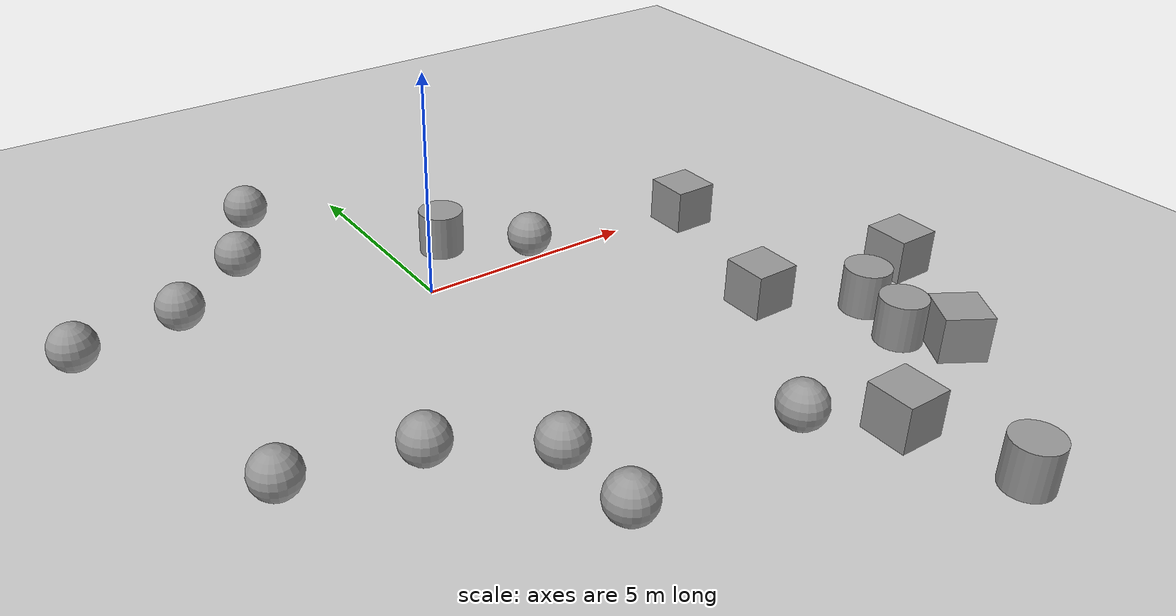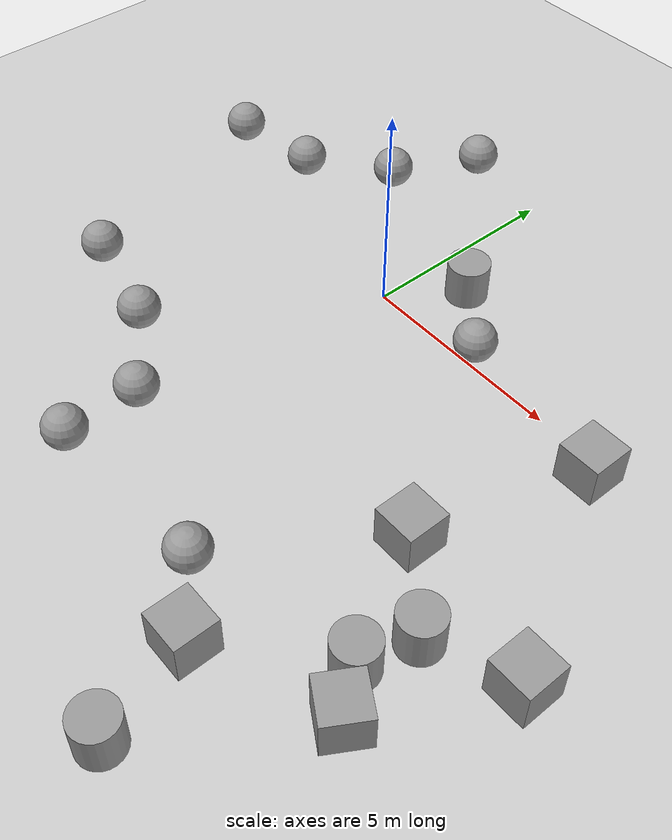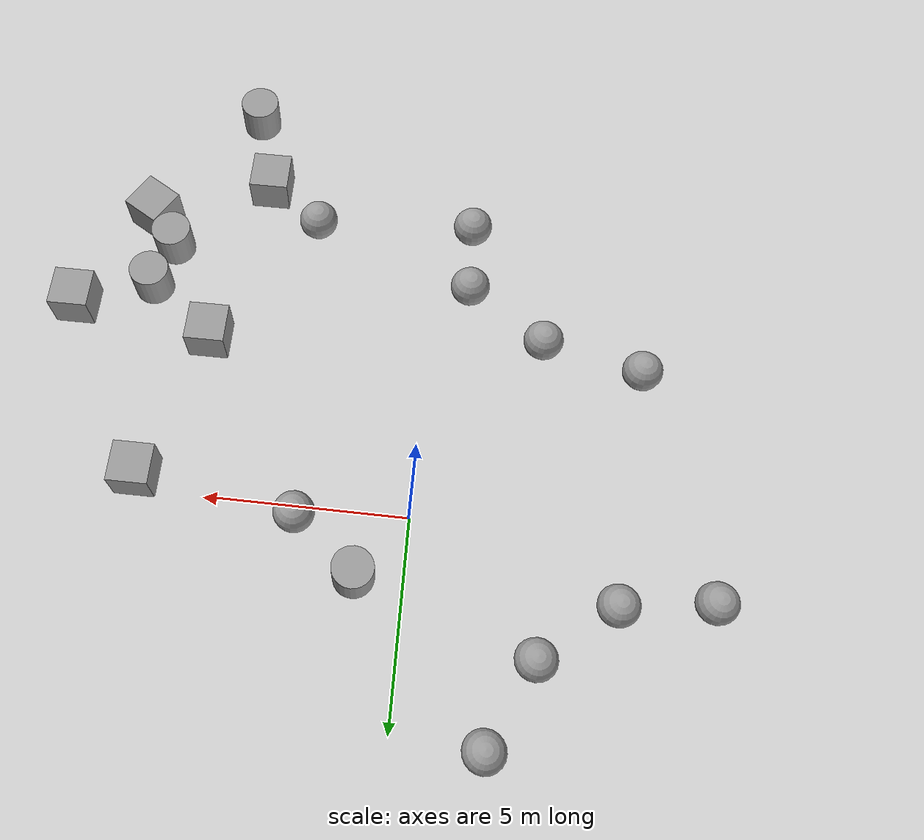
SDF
<sdf version="1.7">
 <world name="default">
  <light name="sun" type="directional">
   <pose>0 0 10 0 -0 0</pose>
   <diffuse>0.8 0.8 0.8 1</diffuse>
   <specular>0.2 0.2 0.2 1</specular>
   <attenuation>
    <range>1000</range>
    <constant>0.9</constant>
    <linear>0.01</linear>
    <quadratic>0.001</quadratic>
   </attenuation>
   <direction>-0.5 0.1 -0.9</direction>
   <spot><inner_angle>0</inner_angle><outer_angle>0</outer_angle><falloff>0</falloff></spot>
  </light>
  <model name="ground_plane">
   <static>1</static>
   <link name="link">
    <collision name="collision">
     <geometry><plane><normal>0 0 1</normal><size>100 100</size></plane></geometry>
     <surface><friction><ode><mu>100</mu><mu2>50</mu2></ode></friction></surface>
    </collision>
    <visual name="visual">
     <cast_shadows>0</cast_shadows>
     <geometry><plane><normal>0 0 1</normal><size>100 100</size></plane></geometry>
     <material>
      <script><uri>file://media/materials/scripts/gazebo.material</uri><name>Gazebo/Grey</name></script>
     </material>
    </visual>
   </link>
  </model>
  <gravity>0 0 -9.8</gravity>
  <magnetic_field>6e-06 2.3e-05 -4.2e-05</magnetic_field>
  <atmosphere type="adiabatic"/>
  <physics type="ode">
   <max_step_size>0.001</max_step_size>
   <real_time_factor>1</real_time_factor>
   <real_time_update_rate>1000</real_time_update_rate>
  </physics>
  <scene><ambient>0.4 0.4 0.4 1</ambient><background>0.7 0.7 0.7 1</background><shadows>1</shadows></scene>
  <audio><device>default</device></audio>
  <spherical_coordinates>
   <surface_model>EARTH_WGS84</surface_model>
   <latitude_deg>0</latitude_deg>
   <longitude_deg>0</longitude_deg>
   <elevation>0</elevation>
   <heading_deg>0</heading_deg>
  </spherical_coordinates>
  <model name="unit_sphere">
   <pose>3.16842 -7.80461 0.5 0 -0 0</pose>
   <link name="link">
    <inertial>
     <mass>1</mass>
     <inertia><ixx>0.1</ixx><ixy>0</ixy><ixz>0</ixz><iyy>0.1</iyy><iyz>0</iyz><izz>0.1</izz></inertia>
    </inertial>
    <collision name="collision"><geometry><sphere><radius>0.5</radius></sphere></geometry></collision>
    <visual name="visual">
     <geometry><sphere><radius>0.5</radius></sphere></geometry>
     <material>
      <script><name>Gazebo/Grey</name><uri>file://media/materials/scripts/gazebo.material</uri></script>
     </material>
    </visual>
   </link>
  </model>
  <model name="unit_cylinder">
   <pose>6.90004 -6.83498 0.499991 -3e-06 1e-06 0.946792</pose>
   <link name="link">
    <inertial>
     <mass>1</mass>
     <inertia><ixx>0.145833</ixx><ixy>0</ixy><ixz>0</ixz><iyy>0.145833</iyy><iyz>0</iyz><izz>0.125</izz></inertia>
    </inertial>
    <collision name="collision">
     <geometry><cylinder><radius>0.5</radius><length>1</length></cylinder></geometry>
    </collision>
    <visual name="visual">
     <geometry><cylinder><radius>0.5</radius><length>1</length></cylinder></geometry>
     <material>
      <script><name>Gazebo/Grey</name><uri>file://media/materials/scripts/gazebo.material</uri></script>
     </material>
    </visual>
   </link>
  </model>
  <model name="unit_box">
   <pose>4.58204 -8.90419 0.499995 0 -1e-05 0</pose>
   <link name="link">
    <inertial>
     <mass>1</mass>
     <inertia>
      <ixx>0.166667</ixx>
      <ixy>0</ixy>
      <ixz>0</ixz>
      <iyy>0.166667</iyy>
      <iyz>0</iyz>
      <izz>0.166667</izz>
     </inertia>
    </inertial>
    <collision name="collision"><geometry><box><size>1 1 1</size></box></geometry></collision>
    <visual name="visual">
     <geometry><box><size>1 1 1</size></box></geometry>
     <material>
      <script><name>Gazebo/Grey</name><uri>file://media/materials/scripts/gazebo.material</uri></script>
     </material>
    </visual>
   </link>
  </model>
  <model name="unit_box_0">
   <pose>5.51619 -4.24815 0.499995 -1e-05 -0 -0</pose>
   <link name="link">
    <inertial>
     <mass>1</mass>
     <inertia>
      <ixx>0.166667</ixx>
      <ixy>0</ixy>
      <ixz>0</ixz>
      <iyy>0.166667</iyy>
      <iyz>0</iyz>
      <izz>0.166667</izz>
     </inertia>
    </inertial>
    <collision name="collision"><geometry><box><size>1 1 1</size></box></geometry></collision>
    <visual name="visual">
     <geometry><box><size>1 1 1</size></box></geometry>
     <material>
      <script><name>Gazebo/Grey</name><uri>file://media/materials/scripts/gazebo.material</uri></script>
     </material>
    </visual>
   </link>
  </model>
  <model name="unit_cylinder_0">
   <pose>7.24357 -5.6011 0.5 0 -0 0</pose>
   <link name="link">
    <inertial>
     <mass>1</mass>
     <inertia><ixx>0.145833</ixx><ixy>0</ixy><ixz>0</ixz><iyy>0.145833</iyy><iyz>0</iyz><izz>0.125</izz></inertia>
    </inertial>
    <collision name="collision">
     <geometry><cylinder><radius>0.5</radius><length>1</length></cylinder></geometry>
    </collision>
    <visual name="visual">
     <geometry><cylinder><radius>0.5</radius><length>1</length></cylinder></geometry>
     <material>
      <script><name>Gazebo/Grey</name><uri>file://media/materials/scripts/gazebo.material</uri></script>
     </material>
    </visual>
   </link>
  </model>
  <model name="unit_sphere_0">
   <pose>-0.924264 -8.03479 0.5 0 -0 0</pose>
   <link name="link">
    <inertial>
     <mass>1</mass>
     <inertia><ixx>0.1</ixx><ixy>0</ixy><ixz>0</ixz><iyy>0.1</iyy><iyz>0</iyz><izz>0.1</izz></inertia>
    </inertial>
    <collision name="collision"><geometry><sphere><radius>0.5</radius></sphere></geometry></collision>
    <visual name="visual">
     <geometry><sphere><radius>0.5</radius></sphere></geometry>
     <material>
      <script><name>Gazebo/Grey</name><uri>file://media/materials/scripts/gazebo.material</uri></script>
     </material>
    </visual>
   </link>
  </model>
  <model name="unit_sphere_1">
   <pose>2.71816 0.265059 0.5 0 -0 0</pose>
   <link name="link">
    <inertial>
     <mass>1</mass>
     <inertia><ixx>0.1</ixx><ixy>0</ixy><ixz>0</ixz><iyy>0.1</iyy><iyz>0</iyz><izz>0.1</izz></inertia>
    </inertial>
    <collision name="collision"><geometry><sphere><radius>0.5</radius></sphere></geometry></collision>
    <visual name="visual">
     <geometry><sphere><radius>0.5</radius></sphere></geometry>
     <material>
      <script><name>Gazebo/Grey</name><uri>file://media/materials/scripts/gazebo.material</uri></script>
     </material>
    </visual>
   </link>
  </model>
  <model name="unit_cylinder_1">
   <pose>1.16376 1.55877 0.499997 3e-06 2e-06 0</pose>
   <link name="link">
    <inertial>
     <mass>1</mass>
     <inertia><ixx>0.145833</ixx><ixy>0</ixy><ixz>0</ixz><iyy>0.145833</iyy><iyz>0</iyz><izz>0.125</izz></inertia>
    </inertial>
    <collision name="collision">
     <geometry><cylinder><radius>0.5</radius><length>1</length></cylinder></geometry>
    </collision>
    <visual name="visual">
     <geometry><cylinder><radius>0.5</radius><length>1</length></cylinder></geometry>
     <material>
      <script><name>Gazebo/Grey</name><uri>file://media/materials/scripts/gazebo.material</uri></script>
     </material>
    </visual>
   </link>
  </model>
  <model name="unit_box_1">
   <pose>6.66761 -0.385312 0.499995 0 -1e-05 0</pose>
   <link name="link">
    <inertial>
     <mass>1</mass>
     <inertia>
      <ixx>0.166667</ixx>
      <ixy>0</ixy>
      <ixz>0</ixz>
      <iyy>0.166667</iyy>
      <iyz>0</iyz>
      <izz>0.166667</izz>
     </inertia>
    </inertial>
    <collision name="collision"><geometry><box><size>1 1 1</size></box></geometry></collision>
    <visual name="visual">
     <geometry><box><size>1 1 1</size></box></geometry>
     <material>
      <script><name>Gazebo/Grey</name><uri>file://media/materials/scripts/gazebo.material</uri></script>
     </material>
    </visual>
   </link>
  </model>
  <model name="unit_cylinder_2">
   <pose>5.20299 -11.0836 0.499994 -4e-06 -3e-06 -0</pose>
   <link name="link">
    <inertial>
     <mass>1</mass>
     <inertia><ixx>0.145833</ixx><ixy>0</ixy><ixz>0</ixz><iyy>0.145833</iyy><iyz>0</iyz><izz>0.125</izz></inertia>
    </inertial>
    <collision name="collision">
     <geometry><cylinder><radius>0.5</radius><length>1</length></cylinder></geometry>
    </collision>
    <visual name="visual">
     <geometry><cylinder><radius>0.5</radius><length>1</length></cylinder></geometry>
     <material>
      <script><name>Gazebo/Grey</name><uri>file://media/materials/scripts/gazebo.material</uri></script>
     </material>
    </visual>
   </link>
  </model>
  <model name="unit_box_2">
   <pose>7.55562 -7.69835 0.499995 -9e-06 -1e-06 -0.539274</pose>
   <link name="link">
    <inertial>
     <mass>1</mass>
     <inertia>
      <ixx>0.166667</ixx>
      <ixy>0</ixy>
      <ixz>0</ixz>
      <iyy>0.166667</iyy>
      <iyz>0</iyz>
      <izz>0.166667</izz>
     </inertia>
    </inertial>
    <collision name="collision"><geometry><box><size>1 1 1</size></box></geometry></collision>
    <visual name="visual">
     <geometry><box><size>1 1 1</size></box></geometry>
     <material>
      <script><name>Gazebo/Grey</name><uri>file://media/materials/scripts/gazebo.material</uri></script>
     </material>
    </visual>
   </link>
  </model>
  <model name="unit_box_3">
   <pose>9.1076 -4.86813 0.499995 -1e-05 -0 -0</pose>
   <link name="link">
    <inertial>
     <mass>1</mass>
     <inertia>
      <ixx>0.166667</ixx>
      <ixy>0</ixy>
      <ixz>0</ixz>
      <iyy>0.166667</iyy>
      <iyz>0</iyz>
      <izz>0.166667</izz>
     </inertia>
    </inertial>
    <collision name="collision"><geometry><box><size>1 1 1</size></box></geometry></collision>
    <visual name="visual">
     <geometry><box><size>1 1 1</size></box></geometry>
     <material>
      <script><name>Gazebo/Grey</name><uri>file://media/materials/scripts/gazebo.material</uri></script>
     </material>
    </visual>
   </link>
  </model>
  <model name="unit_sphere_2">
   <pose>-3.1159 3.08492 0.5 0 -0 0</pose>
   <link name="link">
    <inertial>
     <mass>1</mass>
     <inertia><ixx>0.1</ixx><ixy>0</ixy><ixz>0</ixz><iyy>0.1</iyy><iyz>0</iyz><izz>0.1</izz></inertia>
    </inertial>
    <collision name="collision"><geometry><sphere><radius>0.5</radius></sphere></geometry></collision>
    <visual name="visual">
     <geometry><sphere><radius>0.5</radius></sphere></geometry>
     <material>
      <script><name>Gazebo/Grey</name><uri>file://media/materials/scripts/gazebo.material</uri></script>
     </material>
    </visual>
   </link>
  </model>
  <model name="unit_sphere_3">
   <pose>-2.09238 5.15151 0.5 0 -0 0</pose>
   <link name="link">
    <inertial>
     <mass>1</mass>
     <inertia><ixx>0.1</ixx><ixy>0</ixy><ixz>0</ixz><iyy>0.1</iyy><iyz>0</iyz><izz>0.1</izz></inertia>
    </inertial>
    <collision name="collision"><geometry><sphere><radius>0.5</radius></sphere></geometry></collision>
    <visual name="visual">
     <geometry><sphere><radius>0.5</radius></sphere></geometry>
     <material>
      <script><name>Gazebo/Grey</name><uri>file://media/materials/scripts/gazebo.material</uri></script>
     </material>
    </visual>
   </link>
  </model>
  <model name="unit_sphere_4">
   <pose>-4.92374 1.68031 0.5 0 -0 0</pose>
   <link name="link">
    <inertial>
     <mass>1</mass>
     <inertia><ixx>0.1</ixx><ixy>0</ixy><ixz>0</ixz><iyy>0.1</iyy><iyz>0</iyz><izz>0.1</izz></inertia>
    </inertial>
    <collision name="collision"><geometry><sphere><radius>0.5</radius></sphere></geometry></collision>
    <visual name="visual">
     <geometry><sphere><radius>0.5</radius></sphere></geometry>
     <material>
      <script><name>Gazebo/Grey</name><uri>file://media/materials/scripts/gazebo.material</uri></script>
     </material>
    </visual>
   </link>
  </model>
  <model name="unit_sphere_5">
   <pose>-7.14953 1.38602 0.5 0 -0 0</pose>
   <link name="link">
    <inertial>
     <mass>1</mass>
     <inertia><ixx>0.1</ixx><ixy>0</ixy><ixz>0</ixz><iyy>0.1</iyy><iyz>0</iyz><izz>0.1</izz></inertia>
    </inertial>
    <collision name="collision"><geometry><sphere><radius>0.5</radius></sphere></geometry></collision>
    <visual name="visual">
     <geometry><sphere><radius>0.5</radius></sphere></geometry>
     <material>
      <script><name>Gazebo/Grey</name><uri>file://media/materials/scripts/gazebo.material</uri></script>
     </material>
    </visual>
   </link>
  </model>
  <model name="unit_sphere_6">
   <pose>-5.42394 -4.27459 0.5 0 -0 0</pose>
   <link name="link">
    <inertial>
     <mass>1</mass>
     <inertia><ixx>0.1</ixx><ixy>0</ixy><ixz>0</ixz><iyy>0.1</iyy><iyz>0</iyz><izz>0.1</izz></inertia>
    </inertial>
    <collision name="collision"><geometry><sphere><radius>0.5</radius></sphere></geometry></collision>
    <visual name="visual">
     <geometry><sphere><radius>0.5</radius></sphere></geometry>
     <material>
      <script><name>Gazebo/Grey</name><uri>file://media/materials/scripts/gazebo.material</uri></script>
     </material>
    </visual>
   </link>
  </model>
  <model name="unit_sphere_7">
   <pose>-2.93377 -4.86642 0.5 0 -0 0</pose>
   <link name="link">
    <inertial>
     <mass>1</mass>
     <inertia><ixx>0.1</ixx><ixy>0</ixy><ixz>0</ixz><iyy>0.1</iyy><iyz>0</iyz><izz>0.1</izz></inertia>
    </inertial>
    <collision name="collision"><geometry><sphere><radius>0.5</radius></sphere></geometry></collision>
    <visual name="visual">
     <geometry><sphere><radius>0.5</radius></sphere></geometry>
     <material>
      <script><name>Gazebo/Grey</name><uri>file://media/materials/scripts/gazebo.material</uri></script>
     </material>
    </visual>
   </link>
  </model>
  <model name="unit_sphere_8">
   <pose>-0.982048 -6.22467 0.5 0 -0 0</pose>
   <link name="link">
    <inertial>
     <mass>1</mass>
     <inertia><ixx>0.1</ixx><ixy>0</ixy><ixz>0</ixz><iyy>0.1</iyy><iyz>0</iyz><izz>0.1</izz></inertia>
    </inertial>
    <collision name="collision"><geometry><sphere><radius>0.5</radius></sphere></geometry></collision>
    <visual name="visual">
     <geometry><sphere><radius>0.5</radius></sphere></geometry>
     <material>
      <script><name>Gazebo/Grey</name><uri>file://media/materials/scripts/gazebo.material</uri></script>
     </material>
    </visual>
   </link>
  </model>
 </world>
</sdf>
